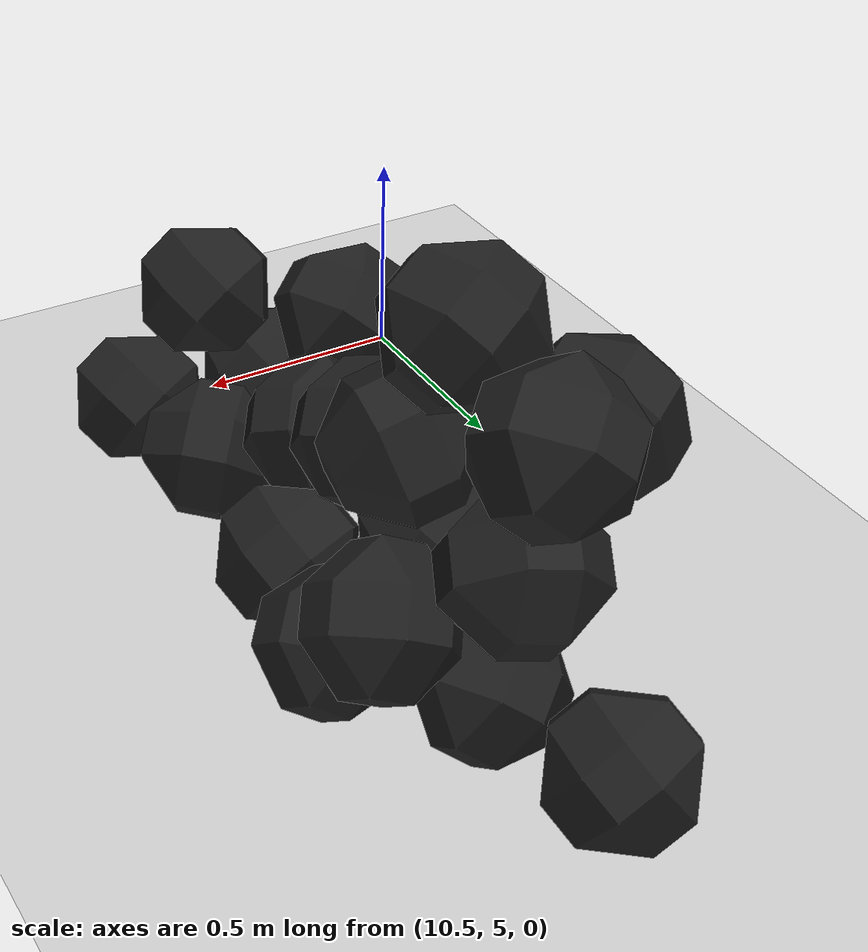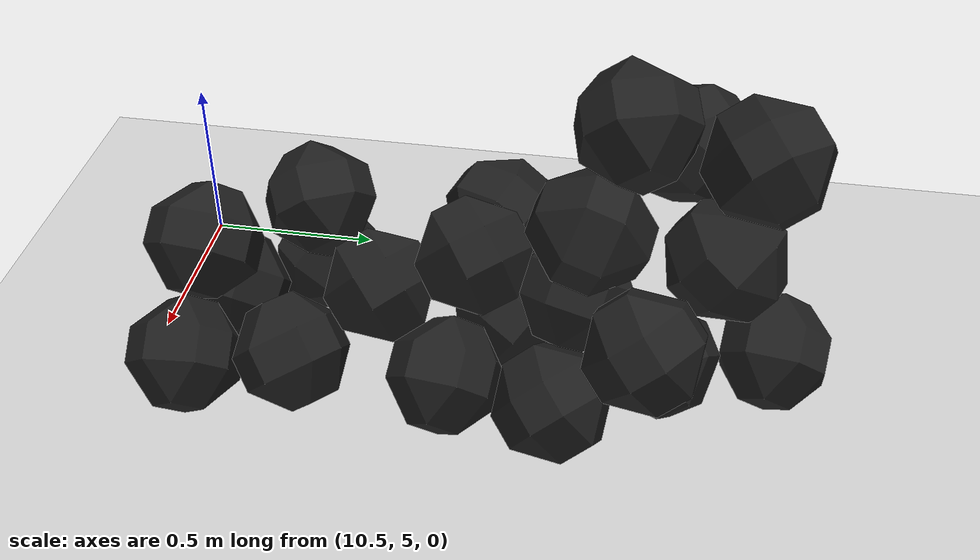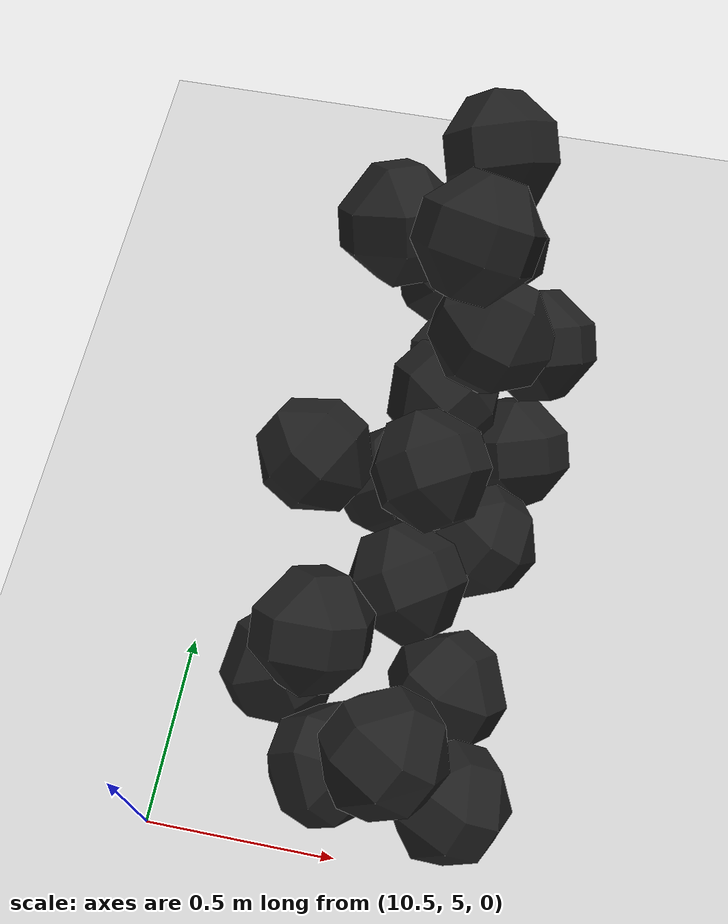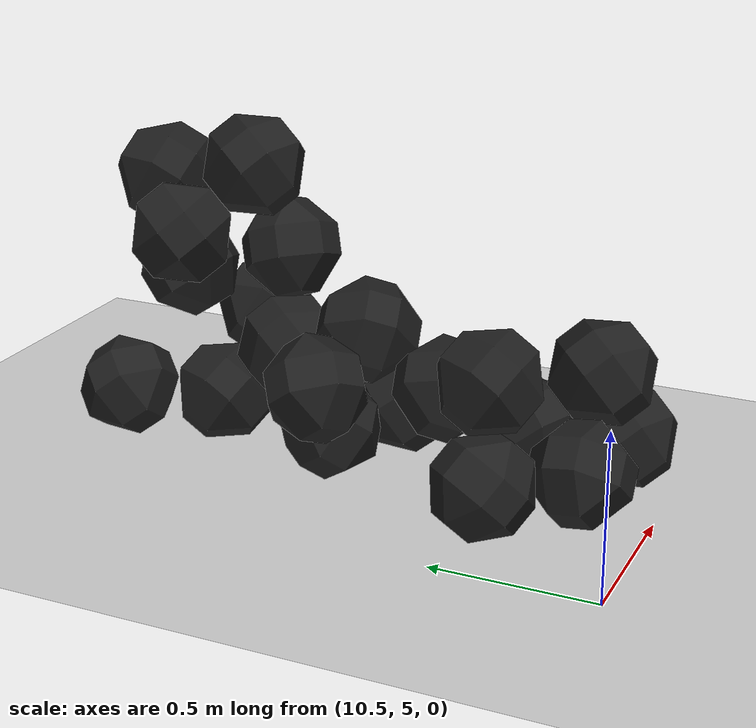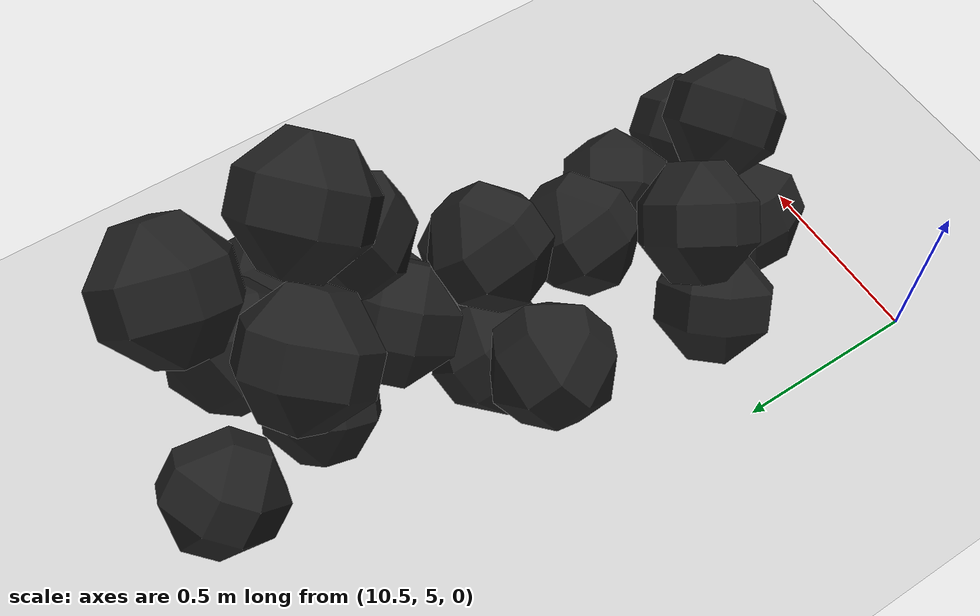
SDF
<sdf version="1.6">
 <world name="default">
  <model name="ground_plane">
   <static>1</static>
   <link name="link">
    <collision name="collision">
     <geometry><plane><normal>0 0 1</normal><size>100 100</size></plane></geometry>
     <surface><friction><ode><mu>100</mu><mu2>50</mu2></ode></friction></surface>
    </collision>
    <visual name="visual">
     <cast_shadows>0</cast_shadows>
     <geometry><plane><normal>0 0 1</normal><size>100 100</size></plane></geometry>
     <material>
      <script><uri>file://media/materials/scripts/gazebo.material</uri><name>Gazebo/Grey</name></script>
     </material>
    </visual>
   </link>
  </model>
  <model name="haoduomiantiaa_12">
   <link name="link_0">
    <inertial>
     <mass>0.2</mass>
     <inertia>
      <ixx>0.166667</ixx>
      <ixy>0</ixy>
      <ixz>0</ixz>
      <iyy>0.166667</iyy>
      <iyz>0</iyz>
      <izz>0.166667</izz>
     </inertia>
    </inertial>
    <visual name="visual">
     <geometry>
      <mesh>
       <uri>/home/oliver/catkin_ws/src/pudong_gazebo/world/stl/haoduomianti.stl</uri>
       <scale>1 1 1</scale>
      </mesh>
     </geometry>
     <material>
      <lighting>1</lighting>
      <script><uri>file://media/materials/scripts/gazebo.material</uri><name>Gazebo/Black</name></script>
      <shader type="pixel"><normal_map>__default__</normal_map></shader>
      <ambient>0.3 0.3 0.3 1</ambient>
      <diffuse>0.7 0.7 0.7 1</diffuse>
      <specular>0.01 0.01 0.01 1</specular>
      <emissive>0 0 0 1</emissive>
     </material>
    </visual>
    <collision name="collision">
     <geometry>
      <mesh>
       <uri>/home/oliver/catkin_ws/src/pudong_gazebo/world/stl/haoduomianti.stl</uri>
       <scale>1 1 1</scale>
      </mesh>
     </geometry>
     <surface>
      <friction>
       <ode><mu>1</mu><mu2>1</mu2><fdir1>0 0 0</fdir1><slip1>0</slip1><slip2>0</slip2></ode>
       <torsional>
        <coefficient>1</coefficient>
        <patch_radius>0</patch_radius>
        <surface_radius>0</surface_radius>
        <use_patch_radius>1</use_patch_radius>
        <ode><slip>0</slip></ode>
       </torsional>
      </friction>
      <bounce><restitution_coefficient>0</restitution_coefficient><threshold>1e+06</threshold></bounce>
      <contact>
       <collide_without_contact>0</collide_without_contact>
       <collide_without_contact_bitmask>1</collide_without_contact_bitmask>
       <collide_bitmask>1</collide_bitmask>
       <ode>
        <soft_cfm>0</soft_cfm>
        <soft_erp>0.2</soft_erp>
        <kp>1e+13</kp>
        <kd>1</kd>
        <max_vel>0.01</max_vel>
        <min_depth>0</min_depth>
       </ode>
       <bullet>
        <split_impulse>1</split_impulse>
        <split_impulse_penetration_threshold>-0.01</split_impulse_penetration_threshold>
        <soft_cfm>0</soft_cfm>
        <soft_erp>0.2</soft_erp>
        <kp>1e+13</kp>
        <kd>1</kd>
       </bullet>
      </contact>
     </surface>
    </collision>
   </link>
   <static>0</static>
   <pose>10.9939 6.75967 -0.115712 0.784651 -0.615816 -1.19184</pose>
  </model>
  <model name="haoduomiantiaa_19">
   <link name="link_0">
    <inertial>
     <mass>0.2</mass>
     <inertia>
      <ixx>0.166667</ixx>
      <ixy>0</ixy>
      <ixz>0</ixz>
      <iyy>0.166667</iyy>
      <iyz>0</iyz>
      <izz>0.166667</izz>
     </inertia>
    </inertial>
    <visual name="visual">
     <geometry>
      <mesh>
       <uri>/home/oliver/catkin_ws/src/pudong_gazebo/world/stl/haoduomianti.stl</uri>
       <scale>1 1 1</scale>
      </mesh>
     </geometry>
     <material>
      <lighting>1</lighting>
      <script><uri>file://media/materials/scripts/gazebo.material</uri><name>Gazebo/Black</name></script>
      <shader type="pixel"><normal_map>__default__</normal_map></shader>
      <ambient>0.3 0.3 0.3 1</ambient>
      <diffuse>0.7 0.7 0.7 1</diffuse>
      <specular>0.01 0.01 0.01 1</specular>
      <emissive>0 0 0 1</emissive>
     </material>
    </visual>
    <collision name="collision">
     <geometry>
      <mesh>
       <uri>/home/oliver/catkin_ws/src/pudong_gazebo/world/stl/haoduomianti.stl</uri>
       <scale>1 1 1</scale>
      </mesh>
     </geometry>
     <surface>
      <friction>
       <ode><mu>1</mu><mu2>1</mu2><fdir1>0 0 0</fdir1><slip1>0</slip1><slip2>0</slip2></ode>
       <torsional>
        <coefficient>1</coefficient>
        <patch_radius>0</patch_radius>
        <surface_radius>0</surface_radius>
        <use_patch_radius>1</use_patch_radius>
        <ode><slip>0</slip></ode>
       </torsional>
      </friction>
      <bounce><restitution_coefficient>0</restitution_coefficient><threshold>1e+06</threshold></bounce>
      <contact>
       <collide_without_contact>0</collide_without_contact>
       <collide_without_contact_bitmask>1</collide_without_contact_bitmask>
       <collide_bitmask>1</collide_bitmask>
       <ode>
        <soft_cfm>0</soft_cfm>
        <soft_erp>0.2</soft_erp>
        <kp>1e+13</kp>
        <kd>1</kd>
        <max_vel>0.01</max_vel>
        <min_depth>0</min_depth>
       </ode>
       <bullet>
        <split_impulse>1</split_impulse>
        <split_impulse_penetration_threshold>-0.01</split_impulse_penetration_threshold>
        <soft_cfm>0</soft_cfm>
        <soft_erp>0.2</soft_erp>
        <kp>1e+13</kp>
        <kd>1</kd>
       </bullet>
      </contact>
     </surface>
    </collision>
   </link>
   <static>0</static>
   <pose>11.2345 5.88753 -0.115497 0.785474 -0.615337 -1.16908</pose>
  </model>
  <model name="haoduomiantiaa_26">
   <link name="link_0">
    <inertial>
     <mass>0.2</mass>
     <inertia>
      <ixx>0.166667</ixx>
      <ixy>0</ixy>
      <ixz>0</ixz>
      <iyy>0.166667</iyy>
      <iyz>0</iyz>
      <izz>0.166667</izz>
     </inertia>
    </inertial>
    <visual name="visual">
     <geometry>
      <mesh>
       <uri>/home/oliver/catkin_ws/src/pudong_gazebo/world/stl/haoduomianti.stl</uri>
       <scale>1 1 1</scale>
      </mesh>
     </geometry>
     <material>
      <lighting>1</lighting>
      <script><uri>file://media/materials/scripts/gazebo.material</uri><name>Gazebo/Black</name></script>
      <shader type="pixel"><normal_map>__default__</normal_map></shader>
      <ambient>0.3 0.3 0.3 1</ambient>
      <diffuse>0.7 0.7 0.7 1</diffuse>
      <specular>0.01 0.01 0.01 1</specular>
      <emissive>0 0 0 1</emissive>
     </material>
    </visual>
    <collision name="collision">
     <geometry>
      <mesh>
       <uri>/home/oliver/catkin_ws/src/pudong_gazebo/world/stl/haoduomianti.stl</uri>
       <scale>1 1 1</scale>
      </mesh>
     </geometry>
     <surface>
      <friction>
       <ode><mu>1</mu><mu2>1</mu2><fdir1>0 0 0</fdir1><slip1>0</slip1><slip2>0</slip2></ode>
       <torsional>
        <coefficient>1</coefficient>
        <patch_radius>0</patch_radius>
        <surface_radius>0</surface_radius>
        <use_patch_radius>1</use_patch_radius>
        <ode><slip>0</slip></ode>
       </torsional>
      </friction>
      <bounce><restitution_coefficient>0</restitution_coefficient><threshold>1e+06</threshold></bounce>
      <contact>
       <collide_without_contact>0</collide_without_contact>
       <collide_without_contact_bitmask>1</collide_without_contact_bitmask>
       <collide_bitmask>1</collide_bitmask>
       <ode>
        <soft_cfm>0</soft_cfm>
        <soft_erp>0.2</soft_erp>
        <kp>1e+13</kp>
        <kd>1</kd>
        <max_vel>0.01</max_vel>
        <min_depth>0</min_depth>
       </ode>
       <bullet>
        <split_impulse>1</split_impulse>
        <split_impulse_penetration_threshold>-0.01</split_impulse_penetration_threshold>
        <soft_cfm>0</soft_cfm>
        <soft_erp>0.2</soft_erp>
        <kp>1e+13</kp>
        <kd>1</kd>
       </bullet>
      </contact>
     </surface>
    </collision>
   </link>
   <static>0</static>
   <pose>11.2894 6.18237 -0.116091 0.785747 -0.615498 1.87095</pose>
  </model>
  <model name="haoduomiantiaa_43">
   <link name="link_0">
    <inertial>
     <mass>0.2</mass>
     <inertia>
      <ixx>0.166667</ixx>
      <ixy>0</ixy>
      <ixz>0</ixz>
      <iyy>0.166667</iyy>
      <iyz>0</iyz>
      <izz>0.166667</izz>
     </inertia>
    </inertial>
    <visual name="visual">
     <geometry>
      <mesh>
       <uri>/home/oliver/catkin_ws/src/pudong_gazebo/world/stl/haoduomianti.stl</uri>
       <scale>1 1 1</scale>
      </mesh>
     </geometry>
     <material>
      <lighting>1</lighting>
      <script><uri>file://media/materials/scripts/gazebo.material</uri><name>Gazebo/Black</name></script>
      <shader type="pixel"><normal_map>__default__</normal_map></shader>
      <ambient>0.3 0.3 0.3 1</ambient>
      <diffuse>0.7 0.7 0.7 1</diffuse>
      <specular>0.01 0.01 0.01 1</specular>
      <emissive>0 0 0 1</emissive>
     </material>
    </visual>
    <collision name="collision">
     <geometry>
      <mesh>
       <uri>/home/oliver/catkin_ws/src/pudong_gazebo/world/stl/haoduomianti.stl</uri>
       <scale>1 1 1</scale>
      </mesh>
     </geometry>
     <surface>
      <friction>
       <ode><mu>1</mu><mu2>1</mu2><fdir1>0 0 0</fdir1><slip1>0</slip1><slip2>0</slip2></ode>
       <torsional>
        <coefficient>1</coefficient>
        <patch_radius>0</patch_radius>
        <surface_radius>0</surface_radius>
        <use_patch_radius>1</use_patch_radius>
        <ode><slip>0</slip></ode>
       </torsional>
      </friction>
      <bounce><restitution_coefficient>0</restitution_coefficient><threshold>1e+06</threshold></bounce>
      <contact>
       <collide_without_contact>0</collide_without_contact>
       <collide_without_contact_bitmask>1</collide_without_contact_bitmask>
       <collide_bitmask>1</collide_bitmask>
       <ode>
        <soft_cfm>0</soft_cfm>
        <soft_erp>0.2</soft_erp>
        <kp>1e+13</kp>
        <kd>1</kd>
        <max_vel>0.01</max_vel>
        <min_depth>0</min_depth>
       </ode>
       <bullet>
        <split_impulse>1</split_impulse>
        <split_impulse_penetration_threshold>-0.01</split_impulse_penetration_threshold>
        <soft_cfm>0</soft_cfm>
        <soft_erp>0.2</soft_erp>
        <kp>1e+13</kp>
        <kd>1</kd>
       </bullet>
      </contact>
     </surface>
    </collision>
   </link>
   <static>0</static>
   <pose>10.9638 6.02305 -0.114013 0.828317 -0.635149 0.227457</pose>
  </model>
  <model name="haoduomiantiaa_46">
   <link name="link_0">
    <inertial>
     <mass>0.2</mass>
     <inertia>
      <ixx>0.166667</ixx>
      <ixy>0</ixy>
      <ixz>0</ixz>
      <iyy>0.166667</iyy>
      <iyz>0</iyz>
      <izz>0.166667</izz>
     </inertia>
    </inertial>
    <visual name="visual">
     <geometry>
      <mesh>
       <uri>/home/oliver/catkin_ws/src/pudong_gazebo/world/stl/haoduomianti.stl</uri>
       <scale>1 1 1</scale>
      </mesh>
     </geometry>
     <material>
      <lighting>1</lighting>
      <script><uri>file://media/materials/scripts/gazebo.material</uri><name>Gazebo/Black</name></script>
      <shader type="pixel"><normal_map>__default__</normal_map></shader>
      <ambient>0.3 0.3 0.3 1</ambient>
      <diffuse>0.7 0.7 0.7 1</diffuse>
      <specular>0.01 0.01 0.01 1</specular>
      <emissive>0 0 0 1</emissive>
     </material>
    </visual>
    <collision name="collision">
     <geometry>
      <mesh>
       <uri>/home/oliver/catkin_ws/src/pudong_gazebo/world/stl/haoduomianti.stl</uri>
       <scale>1 1 1</scale>
      </mesh>
     </geometry>
     <surface>
      <friction>
       <ode><mu>1</mu><mu2>1</mu2><fdir1>0 0 0</fdir1><slip1>0</slip1><slip2>0</slip2></ode>
       <torsional>
        <coefficient>1</coefficient>
        <patch_radius>0</patch_radius>
        <surface_radius>0</surface_radius>
        <use_patch_radius>1</use_patch_radius>
        <ode><slip>0</slip></ode>
       </torsional>
      </friction>
      <bounce><restitution_coefficient>0</restitution_coefficient><threshold>1e+06</threshold></bounce>
      <contact>
       <collide_without_contact>0</collide_without_contact>
       <collide_without_contact_bitmask>1</collide_without_contact_bitmask>
       <collide_bitmask>1</collide_bitmask>
       <ode>
        <soft_cfm>0</soft_cfm>
        <soft_erp>0.2</soft_erp>
        <kp>1e+13</kp>
        <kd>1</kd>
        <max_vel>0.01</max_vel>
        <min_depth>0</min_depth>
       </ode>
       <bullet>
        <split_impulse>1</split_impulse>
        <split_impulse_penetration_threshold>-0.01</split_impulse_penetration_threshold>
        <soft_cfm>0</soft_cfm>
        <soft_erp>0.2</soft_erp>
        <kp>1e+13</kp>
        <kd>1</kd>
       </bullet>
      </contact>
     </surface>
    </collision>
   </link>
   <static>0</static>
   <pose>11.0783 6.44887 -0.11529 0.783274 -0.6138 -0.45428</pose>
  </model>
  <model name="haoduomiantiaa_59">
   <link name="link_0">
    <inertial>
     <mass>0.2</mass>
     <inertia>
      <ixx>0.166667</ixx>
      <ixy>0</ixy>
      <ixz>0</ixz>
      <iyy>0.166667</iyy>
      <iyz>0</iyz>
      <izz>0.166667</izz>
     </inertia>
    </inertial>
    <visual name="visual">
     <geometry>
      <mesh>
       <uri>/home/oliver/catkin_ws/src/pudong_gazebo/world/stl/haoduomianti.stl</uri>
       <scale>1 1 1</scale>
      </mesh>
     </geometry>
     <material>
      <lighting>1</lighting>
      <script><uri>file://media/materials/scripts/gazebo.material</uri><name>Gazebo/Black</name></script>
      <shader type="pixel"><normal_map>__default__</normal_map></shader>
      <ambient>0.3 0.3 0.3 1</ambient>
      <diffuse>0.7 0.7 0.7 1</diffuse>
      <specular>0.01 0.01 0.01 1</specular>
      <emissive>0 0 0 1</emissive>
     </material>
    </visual>
    <collision name="collision">
     <geometry>
      <mesh>
       <uri>/home/oliver/catkin_ws/src/pudong_gazebo/world/stl/haoduomianti.stl</uri>
       <scale>1 1 1</scale>
      </mesh>
     </geometry>
     <surface>
      <friction>
       <ode><mu>1</mu><mu2>1</mu2><fdir1>0 0 0</fdir1><slip1>0</slip1><slip2>0</slip2></ode>
       <torsional>
        <coefficient>1</coefficient>
        <patch_radius>0</patch_radius>
        <surface_radius>0</surface_radius>
        <use_patch_radius>1</use_patch_radius>
        <ode><slip>0</slip></ode>
       </torsional>
      </friction>
      <bounce><restitution_coefficient>0</restitution_coefficient><threshold>1e+06</threshold></bounce>
      <contact>
       <collide_without_contact>0</collide_without_contact>
       <collide_without_contact_bitmask>1</collide_without_contact_bitmask>
       <collide_bitmask>1</collide_bitmask>
       <ode>
        <soft_cfm>0</soft_cfm>
        <soft_erp>0.2</soft_erp>
        <kp>1e+13</kp>
        <kd>1</kd>
        <max_vel>0.01</max_vel>
        <min_depth>0</min_depth>
       </ode>
       <bullet>
        <split_impulse>1</split_impulse>
        <split_impulse_penetration_threshold>-0.01</split_impulse_penetration_threshold>
        <soft_cfm>0</soft_cfm>
        <soft_erp>0.2</soft_erp>
        <kp>1e+13</kp>
        <kd>1</kd>
       </bullet>
      </contact>
     </surface>
    </collision>
   </link>
   <static>0</static>
   <pose>11.2686 6.39493 0.108984 0.707266 -0.492304 -0.104435</pose>
  </model>
  <model name="haoduomiantiaa_69">
   <link name="link_0">
    <inertial>
     <mass>0.2</mass>
     <inertia>
      <ixx>0.166667</ixx>
      <ixy>0</ixy>
      <ixz>0</ixz>
      <iyy>0.166667</iyy>
      <iyz>0</iyz>
      <izz>0.166667</izz>
     </inertia>
    </inertial>
    <visual name="visual">
     <geometry>
      <mesh>
       <uri>/home/oliver/catkin_ws/src/pudong_gazebo/world/stl/haoduomianti.stl</uri>
       <scale>1 1 1</scale>
      </mesh>
     </geometry>
     <material>
      <lighting>1</lighting>
      <script><uri>file://media/materials/scripts/gazebo.material</uri><name>Gazebo/Black</name></script>
      <shader type="pixel"><normal_map>__default__</normal_map></shader>
      <ambient>0.3 0.3 0.3 1</ambient>
      <diffuse>0.7 0.7 0.7 1</diffuse>
      <specular>0.01 0.01 0.01 1</specular>
      <emissive>0 0 0 1</emissive>
     </material>
    </visual>
    <collision name="collision">
     <geometry>
      <mesh>
       <uri>/home/oliver/catkin_ws/src/pudong_gazebo/world/stl/haoduomianti.stl</uri>
       <scale>1 1 1</scale>
      </mesh>
     </geometry>
     <surface>
      <friction>
       <ode><mu>1</mu><mu2>1</mu2><fdir1>0 0 0</fdir1><slip1>0</slip1><slip2>0</slip2></ode>
       <torsional>
        <coefficient>1</coefficient>
        <patch_radius>0</patch_radius>
        <surface_radius>0</surface_radius>
        <use_patch_radius>1</use_patch_radius>
        <ode><slip>0</slip></ode>
       </torsional>
      </friction>
      <bounce><restitution_coefficient>0</restitution_coefficient><threshold>1e+06</threshold></bounce>
      <contact>
       <collide_without_contact>0</collide_without_contact>
       <collide_without_contact_bitmask>1</collide_without_contact_bitmask>
       <collide_bitmask>1</collide_bitmask>
       <ode>
        <soft_cfm>0</soft_cfm>
        <soft_erp>0.2</soft_erp>
        <kp>1e+13</kp>
        <kd>1</kd>
        <max_vel>0.01</max_vel>
        <min_depth>0</min_depth>
       </ode>
       <bullet>
        <split_impulse>1</split_impulse>
        <split_impulse_penetration_threshold>-0.01</split_impulse_penetration_threshold>
        <soft_cfm>0</soft_cfm>
        <soft_erp>0.2</soft_erp>
        <kp>1e+13</kp>
        <kd>1</kd>
       </bullet>
      </contact>
     </surface>
    </collision>
   </link>
   <static>0</static>
   <pose>10.8607 5.53176 -0.09146 1.41855 -0.77893 -0.677783</pose>
  </model>
  <model name="haoduomiantiaa_73">
   <link name="link_0">
    <inertial>
     <mass>0.2</mass>
     <inertia>
      <ixx>0.166667</ixx>
      <ixy>0</ixy>
      <ixz>0</ixz>
      <iyy>0.166667</iyy>
      <iyz>0</iyz>
      <izz>0.166667</izz>
     </inertia>
    </inertial>
    <visual name="visual">
     <geometry>
      <mesh>
       <uri>/home/oliver/catkin_ws/src/pudong_gazebo/world/stl/haoduomianti.stl</uri>
       <scale>1 1 1</scale>
      </mesh>
     </geometry>
     <material>
      <lighting>1</lighting>
      <script><uri>file://media/materials/scripts/gazebo.material</uri><name>Gazebo/Black</name></script>
      <shader type="pixel"><normal_map>__default__</normal_map></shader>
      <ambient>0.3 0.3 0.3 1</ambient>
      <diffuse>0.7 0.7 0.7 1</diffuse>
      <specular>0.01 0.01 0.01 1</specular>
      <emissive>0 0 0 1</emissive>
     </material>
    </visual>
    <collision name="collision">
     <geometry>
      <mesh>
       <uri>/home/oliver/catkin_ws/src/pudong_gazebo/world/stl/haoduomianti.stl</uri>
       <scale>1 1 1</scale>
      </mesh>
     </geometry>
     <surface>
      <friction>
       <ode><mu>1</mu><mu2>1</mu2><fdir1>0 0 0</fdir1><slip1>0</slip1><slip2>0</slip2></ode>
       <torsional>
        <coefficient>1</coefficient>
        <patch_radius>0</patch_radius>
        <surface_radius>0</surface_radius>
        <use_patch_radius>1</use_patch_radius>
        <ode><slip>0</slip></ode>
       </torsional>
      </friction>
      <bounce><restitution_coefficient>0</restitution_coefficient><threshold>1e+06</threshold></bounce>
      <contact>
       <collide_without_contact>0</collide_without_contact>
       <collide_without_contact_bitmask>1</collide_without_contact_bitmask>
       <collide_bitmask>1</collide_bitmask>
       <ode>
        <soft_cfm>0</soft_cfm>
        <soft_erp>0.2</soft_erp>
        <kp>1e+13</kp>
        <kd>1</kd>
        <max_vel>0.01</max_vel>
        <min_depth>0</min_depth>
       </ode>
       <bullet>
        <split_impulse>1</split_impulse>
        <split_impulse_penetration_threshold>-0.01</split_impulse_penetration_threshold>
        <soft_cfm>0</soft_cfm>
        <soft_erp>0.2</soft_erp>
        <kp>1e+13</kp>
        <kd>1</kd>
       </bullet>
      </contact>
     </surface>
    </collision>
   </link>
   <static>0</static>
   <pose>11.119 5.5201 -0.085975 0.226305 -0.772461 -2.33441</pose>
  </model>
  <model name="haoduomiantiaa_92">
   <link name="link_0">
    <inertial>
     <mass>0.2</mass>
     <inertia>
      <ixx>0.166667</ixx>
      <ixy>0</ixy>
      <ixz>0</ixz>
      <iyy>0.166667</iyy>
      <iyz>0</iyz>
      <izz>0.166667</izz>
     </inertia>
    </inertial>
    <visual name="visual">
     <geometry>
      <mesh>
       <uri>/home/oliver/catkin_ws/src/pudong_gazebo/world/stl/haoduomianti.stl</uri>
       <scale>1 1 1</scale>
      </mesh>
     </geometry>
     <material>
      <lighting>1</lighting>
      <script><uri>file://media/materials/scripts/gazebo.material</uri><name>Gazebo/Black</name></script>
      <shader type="pixel"><normal_map>__default__</normal_map></shader>
      <ambient>0.3 0.3 0.3 1</ambient>
      <diffuse>0.7 0.7 0.7 1</diffuse>
      <specular>0.01 0.01 0.01 1</specular>
      <emissive>0 0 0 1</emissive>
     </material>
    </visual>
    <collision name="collision">
     <geometry>
      <mesh>
       <uri>/home/oliver/catkin_ws/src/pudong_gazebo/world/stl/haoduomianti.stl</uri>
       <scale>1 1 1</scale>
      </mesh>
     </geometry>
     <surface>
      <friction>
       <ode><mu>1</mu><mu2>1</mu2><fdir1>0 0 0</fdir1><slip1>0</slip1><slip2>0</slip2></ode>
       <torsional>
        <coefficient>1</coefficient>
        <patch_radius>0</patch_radius>
        <surface_radius>0</surface_radius>
        <use_patch_radius>1</use_patch_radius>
        <ode><slip>0</slip></ode>
       </torsional>
      </friction>
      <bounce><restitution_coefficient>0</restitution_coefficient><threshold>1e+06</threshold></bounce>
      <contact>
       <collide_without_contact>0</collide_without_contact>
       <collide_without_contact_bitmask>1</collide_without_contact_bitmask>
       <collide_bitmask>1</collide_bitmask>
       <ode>
        <soft_cfm>0</soft_cfm>
        <soft_erp>0.2</soft_erp>
        <kp>1e+13</kp>
        <kd>1</kd>
        <max_vel>0.01</max_vel>
        <min_depth>0</min_depth>
       </ode>
       <bullet>
        <split_impulse>1</split_impulse>
        <split_impulse_penetration_threshold>-0.01</split_impulse_penetration_threshold>
        <soft_cfm>0</soft_cfm>
        <soft_erp>0.2</soft_erp>
        <kp>1e+13</kp>
        <kd>1</kd>
       </bullet>
      </contact>
     </surface>
    </collision>
   </link>
   <static>0</static>
   <pose>10.9861 6.15578 0.109832 0.927194 -0.239546 0.88979</pose>
  </model>
  <model name="haoduomiantiaa_97">
   <link name="link_0">
    <inertial>
     <mass>0.2</mass>
     <inertia>
      <ixx>0.166667</ixx>
      <ixy>0</ixy>
      <ixz>0</ixz>
      <iyy>0.166667</iyy>
      <iyz>0</iyz>
      <izz>0.166667</izz>
     </inertia>
    </inertial>
    <visual name="visual">
     <geometry>
      <mesh>
       <uri>/home/oliver/catkin_ws/src/pudong_gazebo/world/stl/haoduomianti.stl</uri>
       <scale>1 1 1</scale>
      </mesh>
     </geometry>
     <material>
      <lighting>1</lighting>
      <script><uri>file://media/materials/scripts/gazebo.material</uri><name>Gazebo/Black</name></script>
      <shader type="pixel"><normal_map>__default__</normal_map></shader>
      <ambient>0.3 0.3 0.3 1</ambient>
      <diffuse>0.7 0.7 0.7 1</diffuse>
      <specular>0.01 0.01 0.01 1</specular>
      <emissive>0 0 0 1</emissive>
     </material>
    </visual>
    <collision name="collision">
     <geometry>
      <mesh>
       <uri>/home/oliver/catkin_ws/src/pudong_gazebo/world/stl/haoduomianti.stl</uri>
       <scale>1 1 1</scale>
      </mesh>
     </geometry>
     <surface>
      <friction>
       <ode><mu>1</mu><mu2>1</mu2><fdir1>0 0 0</fdir1><slip1>0</slip1><slip2>0</slip2></ode>
       <torsional>
        <coefficient>1</coefficient>
        <patch_radius>0</patch_radius>
        <surface_radius>0</surface_radius>
        <use_patch_radius>1</use_patch_radius>
        <ode><slip>0</slip></ode>
       </torsional>
      </friction>
      <bounce><restitution_coefficient>0</restitution_coefficient><threshold>1e+06</threshold></bounce>
      <contact>
       <collide_without_contact>0</collide_without_contact>
       <collide_without_contact_bitmask>1</collide_without_contact_bitmask>
       <collide_bitmask>1</collide_bitmask>
       <ode>
        <soft_cfm>0</soft_cfm>
        <soft_erp>0.2</soft_erp>
        <kp>1e+13</kp>
        <kd>1</kd>
        <max_vel>0.01</max_vel>
        <min_depth>0</min_depth>
       </ode>
       <bullet>
        <split_impulse>1</split_impulse>
        <split_impulse_penetration_threshold>-0.01</split_impulse_penetration_threshold>
        <soft_cfm>0</soft_cfm>
        <soft_erp>0.2</soft_erp>
        <kp>1e+13</kp>
        <kd>1</kd>
       </bullet>
      </contact>
     </surface>
    </collision>
   </link>
   <static>0</static>
   <pose>11.0269 6.6588 0.309727 0.209758 -0.580517 -1.9853</pose>
  </model>
  <model name="haoduomiantiaa_109">
   <link name="link_0">
    <inertial>
     <mass>0.2</mass>
     <inertia>
      <ixx>0.166667</ixx>
      <ixy>0</ixy>
      <ixz>0</ixz>
      <iyy>0.166667</iyy>
      <iyz>0</iyz>
      <izz>0.166667</izz>
     </inertia>
    </inertial>
    <visual name="visual">
     <geometry>
      <mesh>
       <uri>/home/oliver/catkin_ws/src/pudong_gazebo/world/stl/haoduomianti.stl</uri>
       <scale>1 1 1</scale>
      </mesh>
     </geometry>
     <material>
      <lighting>1</lighting>
      <script><uri>file://media/materials/scripts/gazebo.material</uri><name>Gazebo/Black</name></script>
      <shader type="pixel"><normal_map>__default__</normal_map></shader>
      <ambient>0.3 0.3 0.3 1</ambient>
      <diffuse>0.7 0.7 0.7 1</diffuse>
      <specular>0.01 0.01 0.01 1</specular>
      <emissive>0 0 0 1</emissive>
     </material>
    </visual>
    <collision name="collision">
     <geometry>
      <mesh>
       <uri>/home/oliver/catkin_ws/src/pudong_gazebo/world/stl/haoduomianti.stl</uri>
       <scale>1 1 1</scale>
      </mesh>
     </geometry>
     <surface>
      <friction>
       <ode><mu>1</mu><mu2>1</mu2><fdir1>0 0 0</fdir1><slip1>0</slip1><slip2>0</slip2></ode>
       <torsional>
        <coefficient>1</coefficient>
        <patch_radius>0</patch_radius>
        <surface_radius>0</surface_radius>
        <use_patch_radius>1</use_patch_radius>
        <ode><slip>0</slip></ode>
       </torsional>
      </friction>
      <bounce><restitution_coefficient>0</restitution_coefficient><threshold>1e+06</threshold></bounce>
      <contact>
       <collide_without_contact>0</collide_without_contact>
       <collide_without_contact_bitmask>1</collide_without_contact_bitmask>
       <collide_bitmask>1</collide_bitmask>
       <ode>
        <soft_cfm>0</soft_cfm>
        <soft_erp>0.2</soft_erp>
        <kp>1e+13</kp>
        <kd>1</kd>
        <max_vel>0.01</max_vel>
        <min_depth>0</min_depth>
       </ode>
       <bullet>
        <split_impulse>1</split_impulse>
        <split_impulse_penetration_threshold>-0.01</split_impulse_penetration_threshold>
        <soft_cfm>0</soft_cfm>
        <soft_erp>0.2</soft_erp>
        <kp>1e+13</kp>
        <kd>1</kd>
       </bullet>
      </contact>
     </surface>
    </collision>
   </link>
   <static>0</static>
   <pose>11.2689 6.32234 0.400131 1.24136 -0.340187 -1.61916</pose>
  </model>
  <model name="haoduomiantiaa_127">
   <link name="link_0">
    <inertial>
     <mass>0.2</mass>
     <inertia>
      <ixx>0.166667</ixx>
      <ixy>0</ixy>
      <ixz>0</ixz>
      <iyy>0.166667</iyy>
      <iyz>0</iyz>
      <izz>0.166667</izz>
     </inertia>
    </inertial>
    <visual name="visual">
     <geometry>
      <mesh>
       <uri>/home/oliver/catkin_ws/src/pudong_gazebo/world/stl/haoduomianti.stl</uri>
       <scale>1 1 1</scale>
      </mesh>
     </geometry>
     <material>
      <lighting>1</lighting>
      <script><uri>file://media/materials/scripts/gazebo.material</uri><name>Gazebo/Black</name></script>
      <shader type="pixel"><normal_map>__default__</normal_map></shader>
      <ambient>0.3 0.3 0.3 1</ambient>
      <diffuse>0.7 0.7 0.7 1</diffuse>
      <specular>0.01 0.01 0.01 1</specular>
      <emissive>0 0 0 1</emissive>
     </material>
    </visual>
    <collision name="collision">
     <geometry>
      <mesh>
       <uri>/home/oliver/catkin_ws/src/pudong_gazebo/world/stl/haoduomianti.stl</uri>
       <scale>1 1 1</scale>
      </mesh>
     </geometry>
     <surface>
      <friction>
       <ode><mu>1</mu><mu2>1</mu2><fdir1>0 0 0</fdir1><slip1>0</slip1><slip2>0</slip2></ode>
       <torsional>
        <coefficient>1</coefficient>
        <patch_radius>0</patch_radius>
        <surface_radius>0</surface_radius>
        <use_patch_radius>1</use_patch_radius>
        <ode><slip>0</slip></ode>
       </torsional>
      </friction>
      <bounce><restitution_coefficient>0</restitution_coefficient><threshold>1e+06</threshold></bounce>
      <contact>
       <collide_without_contact>0</collide_without_contact>
       <collide_without_contact_bitmask>1</collide_without_contact_bitmask>
       <collide_bitmask>1</collide_bitmask>
       <ode>
        <soft_cfm>0</soft_cfm>
        <soft_erp>0.2</soft_erp>
        <kp>1e+13</kp>
        <kd>1</kd>
        <max_vel>0.01</max_vel>
        <min_depth>0</min_depth>
       </ode>
       <bullet>
        <split_impulse>1</split_impulse>
        <split_impulse_penetration_threshold>-0.01</split_impulse_penetration_threshold>
        <soft_cfm>0</soft_cfm>
        <soft_erp>0.2</soft_erp>
        <kp>1e+13</kp>
        <kd>1</kd>
       </bullet>
      </contact>
     </surface>
    </collision>
   </link>
   <static>0</static>
   <pose>10.8744 5.4604 0.158401 0.819608 -0.594782 -2.65069</pose>
  </model>
  <model name="haoduomiantiaa_133">
   <link name="link_0">
    <inertial>
     <mass>0.2</mass>
     <inertia>
      <ixx>0.166667</ixx>
      <ixy>0</ixy>
      <ixz>0</ixz>
      <iyy>0.166667</iyy>
      <iyz>0</iyz>
      <izz>0.166667</izz>
     </inertia>
    </inertial>
    <visual name="visual">
     <geometry>
      <mesh>
       <uri>/home/oliver/catkin_ws/src/pudong_gazebo/world/stl/haoduomianti.stl</uri>
       <scale>1 1 1</scale>
      </mesh>
     </geometry>
     <material>
      <lighting>1</lighting>
      <script><uri>file://media/materials/scripts/gazebo.material</uri><name>Gazebo/Black</name></script>
      <shader type="pixel"><normal_map>__default__</normal_map></shader>
      <ambient>0.3 0.3 0.3 1</ambient>
      <diffuse>0.7 0.7 0.7 1</diffuse>
      <specular>0.01 0.01 0.01 1</specular>
      <emissive>0 0 0 1</emissive>
     </material>
    </visual>
    <collision name="collision">
     <geometry>
      <mesh>
       <uri>/home/oliver/catkin_ws/src/pudong_gazebo/world/stl/haoduomianti.stl</uri>
       <scale>1 1 1</scale>
      </mesh>
     </geometry>
     <surface>
      <friction>
       <ode><mu>1</mu><mu2>1</mu2><fdir1>0 0 0</fdir1><slip1>0</slip1><slip2>0</slip2></ode>
       <torsional>
        <coefficient>1</coefficient>
        <patch_radius>0</patch_radius>
        <surface_radius>0</surface_radius>
        <use_patch_radius>1</use_patch_radius>
        <ode><slip>0</slip></ode>
       </torsional>
      </friction>
      <bounce><restitution_coefficient>0</restitution_coefficient><threshold>1e+06</threshold></bounce>
      <contact>
       <collide_without_contact>0</collide_without_contact>
       <collide_without_contact_bitmask>1</collide_without_contact_bitmask>
       <collide_bitmask>1</collide_bitmask>
       <ode>
        <soft_cfm>0</soft_cfm>
        <soft_erp>0.2</soft_erp>
        <kp>1e+13</kp>
        <kd>1</kd>
        <max_vel>0.01</max_vel>
        <min_depth>0</min_depth>
       </ode>
       <bullet>
        <split_impulse>1</split_impulse>
        <split_impulse_penetration_threshold>-0.01</split_impulse_penetration_threshold>
        <soft_cfm>0</soft_cfm>
        <soft_erp>0.2</soft_erp>
        <kp>1e+13</kp>
        <kd>1</kd>
       </bullet>
      </contact>
     </surface>
    </collision>
   </link>
   <static>0</static>
   <pose>11.0962 5.62538 0.036643 0.786665 -0.375184 2.14539</pose>
  </model>
  <model name="haoduomiantiaa_135">
   <link name="link_0">
    <inertial>
     <mass>0.2</mass>
     <inertia>
      <ixx>0.166667</ixx>
      <ixy>0</ixy>
      <ixz>0</ixz>
      <iyy>0.166667</iyy>
      <iyz>0</iyz>
      <izz>0.166667</izz>
     </inertia>
    </inertial>
    <visual name="visual">
     <geometry>
      <mesh>
       <uri>/home/oliver/catkin_ws/src/pudong_gazebo/world/stl/haoduomianti.stl</uri>
       <scale>1 1 1</scale>
      </mesh>
     </geometry>
     <material>
      <lighting>1</lighting>
      <script><uri>file://media/materials/scripts/gazebo.material</uri><name>Gazebo/Black</name></script>
      <shader type="pixel"><normal_map>__default__</normal_map></shader>
      <ambient>0.3 0.3 0.3 1</ambient>
      <diffuse>0.7 0.7 0.7 1</diffuse>
      <specular>0.01 0.01 0.01 1</specular>
      <emissive>0 0 0 1</emissive>
     </material>
    </visual>
    <collision name="collision">
     <geometry>
      <mesh>
       <uri>/home/oliver/catkin_ws/src/pudong_gazebo/world/stl/haoduomianti.stl</uri>
       <scale>1 1 1</scale>
      </mesh>
     </geometry>
     <surface>
      <friction>
       <ode><mu>1</mu><mu2>1</mu2><fdir1>0 0 0</fdir1><slip1>0</slip1><slip2>0</slip2></ode>
       <torsional>
        <coefficient>1</coefficient>
        <patch_radius>0</patch_radius>
        <surface_radius>0</surface_radius>
        <use_patch_radius>1</use_patch_radius>
        <ode><slip>0</slip></ode>
       </torsional>
      </friction>
      <bounce><restitution_coefficient>0</restitution_coefficient><threshold>1e+06</threshold></bounce>
      <contact>
       <collide_without_contact>0</collide_without_contact>
       <collide_without_contact_bitmask>1</collide_without_contact_bitmask>
       <collide_bitmask>1</collide_bitmask>
       <ode>
        <soft_cfm>0</soft_cfm>
        <soft_erp>0.2</soft_erp>
        <kp>1e+13</kp>
        <kd>1</kd>
        <max_vel>0.01</max_vel>
        <min_depth>0</min_depth>
       </ode>
       <bullet>
        <split_impulse>1</split_impulse>
        <split_impulse_penetration_threshold>-0.01</split_impulse_penetration_threshold>
        <soft_cfm>0</soft_cfm>
        <soft_erp>0.2</soft_erp>
        <kp>1e+13</kp>
        <kd>1</kd>
       </bullet>
      </contact>
     </surface>
    </collision>
   </link>
   <static>0</static>
   <pose>10.9621 6.55505 0.488995 0.361273 -0.898567 1.82613</pose>
  </model>
  <model name="haoduomiantiaa_155">
   <link name="link_0">
    <inertial>
     <mass>0.2</mass>
     <inertia>
      <ixx>0.166667</ixx>
      <ixy>0</ixy>
      <ixz>0</ixz>
      <iyy>0.166667</iyy>
      <iyz>0</iyz>
      <izz>0.166667</izz>
     </inertia>
    </inertial>
    <visual name="visual">
     <geometry>
      <mesh>
       <uri>/home/oliver/catkin_ws/src/pudong_gazebo/world/stl/haoduomianti.stl</uri>
       <scale>1 1 1</scale>
      </mesh>
     </geometry>
     <material>
      <lighting>1</lighting>
      <script><uri>file://media/materials/scripts/gazebo.material</uri><name>Gazebo/Black</name></script>
      <shader type="pixel"><normal_map>__default__</normal_map></shader>
      <ambient>0.3 0.3 0.3 1</ambient>
      <diffuse>0.7 0.7 0.7 1</diffuse>
      <specular>0.01 0.01 0.01 1</specular>
      <emissive>0 0 0 1</emissive>
     </material>
    </visual>
    <collision name="collision">
     <geometry>
      <mesh>
       <uri>/home/oliver/catkin_ws/src/pudong_gazebo/world/stl/haoduomianti.stl</uri>
       <scale>1 1 1</scale>
      </mesh>
     </geometry>
     <surface>
      <friction>
       <ode><mu>1</mu><mu2>1</mu2><fdir1>0 0 0</fdir1><slip1>0</slip1><slip2>0</slip2></ode>
       <torsional>
        <coefficient>1</coefficient>
        <patch_radius>0</patch_radius>
        <surface_radius>0</surface_radius>
        <use_patch_radius>1</use_patch_radius>
        <ode><slip>0</slip></ode>
       </torsional>
      </friction>
      <bounce><restitution_coefficient>0</restitution_coefficient><threshold>1e+06</threshold></bounce>
      <contact>
       <collide_without_contact>0</collide_without_contact>
       <collide_without_contact_bitmask>1</collide_without_contact_bitmask>
       <collide_bitmask>1</collide_bitmask>
       <ode>
        <soft_cfm>0</soft_cfm>
        <soft_erp>0.2</soft_erp>
        <kp>1e+13</kp>
        <kd>1</kd>
        <max_vel>0.01</max_vel>
        <min_depth>0</min_depth>
       </ode>
       <bullet>
        <split_impulse>1</split_impulse>
        <split_impulse_penetration_threshold>-0.01</split_impulse_penetration_threshold>
        <soft_cfm>0</soft_cfm>
        <soft_erp>0.2</soft_erp>
        <kp>1e+13</kp>
        <kd>1</kd>
       </bullet>
      </contact>
     </surface>
    </collision>
   </link>
   <static>0</static>
   <pose>11.1482 6.64161 0.580332 0.779418 -0.741706 -0.272455</pose>
  </model>
  <model name="haoduomiantiaa_159">
   <link name="link_0">
    <inertial>
     <mass>0.2</mass>
     <inertia>
      <ixx>0.166667</ixx>
      <ixy>0</ixy>
      <ixz>0</ixz>
      <iyy>0.166667</iyy>
      <iyz>0</iyz>
      <izz>0.166667</izz>
     </inertia>
    </inertial>
    <visual name="visual">
     <geometry>
      <mesh>
       <uri>/home/oliver/catkin_ws/src/pudong_gazebo/world/stl/haoduomianti.stl</uri>
       <scale>1 1 1</scale>
      </mesh>
     </geometry>
     <material>
      <lighting>1</lighting>
      <script><uri>file://media/materials/scripts/gazebo.material</uri><name>Gazebo/Black</name></script>
      <shader type="pixel"><normal_map>__default__</normal_map></shader>
      <ambient>0.3 0.3 0.3 1</ambient>
      <diffuse>0.7 0.7 0.7 1</diffuse>
      <specular>0.01 0.01 0.01 1</specular>
      <emissive>0 0 0 1</emissive>
     </material>
    </visual>
    <collision name="collision">
     <geometry>
      <mesh>
       <uri>/home/oliver/catkin_ws/src/pudong_gazebo/world/stl/haoduomianti.stl</uri>
       <scale>1 1 1</scale>
      </mesh>
     </geometry>
     <surface>
      <friction>
       <ode><mu>1</mu><mu2>1</mu2><fdir1>0 0 0</fdir1><slip1>0</slip1><slip2>0</slip2></ode>
       <torsional>
        <coefficient>1</coefficient>
        <patch_radius>0</patch_radius>
        <surface_radius>0</surface_radius>
        <use_patch_radius>1</use_patch_radius>
        <ode><slip>0</slip></ode>
       </torsional>
      </friction>
      <bounce><restitution_coefficient>0</restitution_coefficient><threshold>1e+06</threshold></bounce>
      <contact>
       <collide_without_contact>0</collide_without_contact>
       <collide_without_contact_bitmask>1</collide_without_contact_bitmask>
       <collide_bitmask>1</collide_bitmask>
       <ode>
        <soft_cfm>0</soft_cfm>
        <soft_erp>0.2</soft_erp>
        <kp>1e+13</kp>
        <kd>1</kd>
        <max_vel>0.01</max_vel>
        <min_depth>0</min_depth>
       </ode>
       <bullet>
        <split_impulse>1</split_impulse>
        <split_impulse_penetration_threshold>-0.01</split_impulse_penetration_threshold>
        <soft_cfm>0</soft_cfm>
        <soft_erp>0.2</soft_erp>
        <kp>1e+13</kp>
        <kd>1</kd>
       </bullet>
      </contact>
     </surface>
    </collision>
   </link>
   <static>0</static>
   <pose>11.2675 5.16914 -0.115227 0.785305 -0.61519 -3.06662</pose>
  </model>
  <model name="haoduomiantiaa_171">
   <link name="link_0">
    <inertial>
     <mass>0.2</mass>
     <inertia>
      <ixx>0.166667</ixx>
      <ixy>0</ixy>
      <ixz>0</ixz>
      <iyy>0.166667</iyy>
      <iyz>0</iyz>
      <izz>0.166667</izz>
     </inertia>
    </inertial>
    <visual name="visual">
     <geometry>
      <mesh>
       <uri>/home/oliver/catkin_ws/src/pudong_gazebo/world/stl/haoduomianti.stl</uri>
       <scale>1 1 1</scale>
      </mesh>
     </geometry>
     <material>
      <lighting>1</lighting>
      <script><uri>file://media/materials/scripts/gazebo.material</uri><name>Gazebo/Black</name></script>
      <shader type="pixel"><normal_map>__default__</normal_map></shader>
      <ambient>0.3 0.3 0.3 1</ambient>
      <diffuse>0.7 0.7 0.7 1</diffuse>
      <specular>0.01 0.01 0.01 1</specular>
      <emissive>0 0 0 1</emissive>
     </material>
    </visual>
    <collision name="collision">
     <geometry>
      <mesh>
       <uri>/home/oliver/catkin_ws/src/pudong_gazebo/world/stl/haoduomianti.stl</uri>
       <scale>1 1 1</scale>
      </mesh>
     </geometry>
     <surface>
      <friction>
       <ode><mu>1</mu><mu2>1</mu2><fdir1>0 0 0</fdir1><slip1>0</slip1><slip2>0</slip2></ode>
       <torsional>
        <coefficient>1</coefficient>
        <patch_radius>0</patch_radius>
        <surface_radius>0</surface_radius>
        <use_patch_radius>1</use_patch_radius>
        <ode><slip>0</slip></ode>
       </torsional>
      </friction>
      <bounce><restitution_coefficient>0</restitution_coefficient><threshold>1e+06</threshold></bounce>
      <contact>
       <collide_without_contact>0</collide_without_contact>
       <collide_without_contact_bitmask>1</collide_without_contact_bitmask>
       <collide_bitmask>1</collide_bitmask>
       <ode>
        <soft_cfm>0</soft_cfm>
        <soft_erp>0.2</soft_erp>
        <kp>1e+13</kp>
        <kd>1</kd>
        <max_vel>0.01</max_vel>
        <min_depth>0</min_depth>
       </ode>
       <bullet>
        <split_impulse>1</split_impulse>
        <split_impulse_penetration_threshold>-0.01</split_impulse_penetration_threshold>
        <soft_cfm>0</soft_cfm>
        <soft_erp>0.2</soft_erp>
        <kp>1e+13</kp>
        <kd>1</kd>
       </bullet>
      </contact>
     </surface>
    </collision>
   </link>
   <static>0</static>
   <pose>11.1238 6.35412 0.641907 0.719943 -0.692579 1.33979</pose>
  </model>
  <model name="haoduomiantiaa_172">
   <link name="link_0">
    <inertial>
     <mass>0.2</mass>
     <inertia>
      <ixx>0.166667</ixx>
      <ixy>0</ixy>
      <ixz>0</ixz>
      <iyy>0.166667</iyy>
      <iyz>0</iyz>
      <izz>0.166667</izz>
     </inertia>
    </inertial>
    <visual name="visual">
     <geometry>
      <mesh>
       <uri>/home/oliver/catkin_ws/src/pudong_gazebo/world/stl/haoduomianti.stl</uri>
       <scale>1 1 1</scale>
      </mesh>
     </geometry>
     <material>
      <lighting>1</lighting>
      <script><uri>file://media/materials/scripts/gazebo.material</uri><name>Gazebo/Black</name></script>
      <shader type="pixel"><normal_map>__default__</normal_map></shader>
      <ambient>0.3 0.3 0.3 1</ambient>
      <diffuse>0.7 0.7 0.7 1</diffuse>
      <specular>0.01 0.01 0.01 1</specular>
      <emissive>0 0 0 1</emissive>
     </material>
    </visual>
    <collision name="collision">
     <geometry>
      <mesh>
       <uri>/home/oliver/catkin_ws/src/pudong_gazebo/world/stl/haoduomianti.stl</uri>
       <scale>1 1 1</scale>
      </mesh>
     </geometry>
     <surface>
      <friction>
       <ode><mu>1</mu><mu2>1</mu2><fdir1>0 0 0</fdir1><slip1>0</slip1><slip2>0</slip2></ode>
       <torsional>
        <coefficient>1</coefficient>
        <patch_radius>0</patch_radius>
        <surface_radius>0</surface_radius>
        <use_patch_radius>1</use_patch_radius>
        <ode><slip>0</slip></ode>
       </torsional>
      </friction>
      <bounce><restitution_coefficient>0</restitution_coefficient><threshold>1e+06</threshold></bounce>
      <contact>
       <collide_without_contact>0</collide_without_contact>
       <collide_without_contact_bitmask>1</collide_without_contact_bitmask>
       <collide_bitmask>1</collide_bitmask>
       <ode>
        <soft_cfm>0</soft_cfm>
        <soft_erp>0.2</soft_erp>
        <kp>1e+13</kp>
        <kd>1</kd>
        <max_vel>0.01</max_vel>
        <min_depth>0</min_depth>
       </ode>
       <bullet>
        <split_impulse>1</split_impulse>
        <split_impulse_penetration_threshold>-0.01</split_impulse_penetration_threshold>
        <soft_cfm>0</soft_cfm>
        <soft_erp>0.2</soft_erp>
        <kp>1e+13</kp>
        <kd>1</kd>
       </bullet>
      </contact>
     </surface>
    </collision>
   </link>
   <static>0</static>
   <pose>10.9572 5.31678 -0.0868 1.32967 -0.770611 0.062836</pose>
  </model>
  <model name="haoduomiantiaa_179">
   <link name="link_0">
    <inertial>
     <mass>0.2</mass>
     <inertia>
      <ixx>0.166667</ixx>
      <ixy>0</ixy>
      <ixz>0</ixz>
      <iyy>0.166667</iyy>
      <iyz>0</iyz>
      <izz>0.166667</izz>
     </inertia>
    </inertial>
    <visual name="visual">
     <geometry>
      <mesh>
       <uri>/home/oliver/catkin_ws/src/pudong_gazebo/world/stl/haoduomianti.stl</uri>
       <scale>1 1 1</scale>
      </mesh>
     </geometry>
     <material>
      <lighting>1</lighting>
      <script><uri>file://media/materials/scripts/gazebo.material</uri><name>Gazebo/Black</name></script>
      <shader type="pixel"><normal_map>__default__</normal_map></shader>
      <ambient>0.3 0.3 0.3 1</ambient>
      <diffuse>0.7 0.7 0.7 1</diffuse>
      <specular>0.01 0.01 0.01 1</specular>
      <emissive>0 0 0 1</emissive>
     </material>
    </visual>
    <collision name="collision">
     <geometry>
      <mesh>
       <uri>/home/oliver/catkin_ws/src/pudong_gazebo/world/stl/haoduomianti.stl</uri>
       <scale>1 1 1</scale>
      </mesh>
     </geometry>
     <surface>
      <friction>
       <ode><mu>1</mu><mu2>1</mu2><fdir1>0 0 0</fdir1><slip1>0</slip1><slip2>0</slip2></ode>
       <torsional>
        <coefficient>1</coefficient>
        <patch_radius>0</patch_radius>
        <surface_radius>0</surface_radius>
        <use_patch_radius>1</use_patch_radius>
        <ode><slip>0</slip></ode>
       </torsional>
      </friction>
      <bounce><restitution_coefficient>0</restitution_coefficient><threshold>1e+06</threshold></bounce>
      <contact>
       <collide_without_contact>0</collide_without_contact>
       <collide_without_contact_bitmask>1</collide_without_contact_bitmask>
       <collide_bitmask>1</collide_bitmask>
       <ode>
        <soft_cfm>0</soft_cfm>
        <soft_erp>0.2</soft_erp>
        <kp>1e+13</kp>
        <kd>1</kd>
        <max_vel>0.01</max_vel>
        <min_depth>0</min_depth>
       </ode>
       <bullet>
        <split_impulse>1</split_impulse>
        <split_impulse_penetration_threshold>-0.01</split_impulse_penetration_threshold>
        <soft_cfm>0</soft_cfm>
        <soft_erp>0.2</soft_erp>
        <kp>1e+13</kp>
        <kd>1</kd>
       </bullet>
      </contact>
     </surface>
    </collision>
   </link>
   <static>0</static>
   <pose>10.8292 5.95432 0.103416 0.680377 -0.363399 2.66741</pose>
  </model>
  <model name="haoduomiantiaa_186">
   <link name="link_0">
    <inertial>
     <mass>0.2</mass>
     <inertia>
      <ixx>0.166667</ixx>
      <ixy>0</ixy>
      <ixz>0</ixz>
      <iyy>0.166667</iyy>
      <iyz>0</iyz>
      <izz>0.166667</izz>
     </inertia>
    </inertial>
    <visual name="visual">
     <geometry>
      <mesh>
       <uri>/home/oliver/catkin_ws/src/pudong_gazebo/world/stl/haoduomianti.stl</uri>
       <scale>1 1 1</scale>
      </mesh>
     </geometry>
     <material>
      <lighting>1</lighting>
      <script><uri>file://media/materials/scripts/gazebo.material</uri><name>Gazebo/Black</name></script>
      <shader type="pixel"><normal_map>__default__</normal_map></shader>
      <ambient>0.3 0.3 0.3 1</ambient>
      <diffuse>0.7 0.7 0.7 1</diffuse>
      <specular>0.01 0.01 0.01 1</specular>
      <emissive>0 0 0 1</emissive>
     </material>
    </visual>
    <collision name="collision">
     <geometry>
      <mesh>
       <uri>/home/oliver/catkin_ws/src/pudong_gazebo/world/stl/haoduomianti.stl</uri>
       <scale>1 1 1</scale>
      </mesh>
     </geometry>
     <surface>
      <friction>
       <ode><mu>1</mu><mu2>1</mu2><fdir1>0 0 0</fdir1><slip1>0</slip1><slip2>0</slip2></ode>
       <torsional>
        <coefficient>1</coefficient>
        <patch_radius>0</patch_radius>
        <surface_radius>0</surface_radius>
        <use_patch_radius>1</use_patch_radius>
        <ode><slip>0</slip></ode>
       </torsional>
      </friction>
      <bounce><restitution_coefficient>0</restitution_coefficient><threshold>1e+06</threshold></bounce>
      <contact>
       <collide_without_contact>0</collide_without_contact>
       <collide_without_contact_bitmask>1</collide_without_contact_bitmask>
       <collide_bitmask>1</collide_bitmask>
       <ode>
        <soft_cfm>0</soft_cfm>
        <soft_erp>0.2</soft_erp>
        <kp>1e+13</kp>
        <kd>1</kd>
        <max_vel>0.01</max_vel>
        <min_depth>0</min_depth>
       </ode>
       <bullet>
        <split_impulse>1</split_impulse>
        <split_impulse_penetration_threshold>-0.01</split_impulse_penetration_threshold>
        <soft_cfm>0</soft_cfm>
        <soft_erp>0.2</soft_erp>
        <kp>1e+13</kp>
        <kd>1</kd>
       </bullet>
      </contact>
     </surface>
    </collision>
   </link>
   <static>0</static>
   <pose>11.0702 5.17932 0.152522 0.899795 -0.705841 3.0523</pose>
  </model>
  <model name="haoduomiantiaa_188">
   <link name="link_0">
    <inertial>
     <mass>0.2</mass>
     <inertia>
      <ixx>0.166667</ixx>
      <ixy>0</ixy>
      <ixz>0</ixz>
      <iyy>0.166667</iyy>
      <iyz>0</iyz>
      <izz>0.166667</izz>
     </inertia>
    </inertial>
    <visual name="visual">
     <geometry>
      <mesh>
       <uri>/home/oliver/catkin_ws/src/pudong_gazebo/world/stl/haoduomianti.stl</uri>
       <scale>1 1 1</scale>
      </mesh>
     </geometry>
     <material>
      <lighting>1</lighting>
      <script><uri>file://media/materials/scripts/gazebo.material</uri><name>Gazebo/Black</name></script>
      <shader type="pixel"><normal_map>__default__</normal_map></shader>
      <ambient>0.3 0.3 0.3 1</ambient>
      <diffuse>0.7 0.7 0.7 1</diffuse>
      <specular>0.01 0.01 0.01 1</specular>
      <emissive>0 0 0 1</emissive>
     </material>
    </visual>
    <collision name="collision">
     <geometry>
      <mesh>
       <uri>/home/oliver/catkin_ws/src/pudong_gazebo/world/stl/haoduomianti.stl</uri>
       <scale>1 1 1</scale>
      </mesh>
     </geometry>
     <surface>
      <friction>
       <ode><mu>1</mu><mu2>1</mu2><fdir1>0 0 0</fdir1><slip1>0</slip1><slip2>0</slip2></ode>
       <torsional>
        <coefficient>1</coefficient>
        <patch_radius>0</patch_radius>
        <surface_radius>0</surface_radius>
        <use_patch_radius>1</use_patch_radius>
        <ode><slip>0</slip></ode>
       </torsional>
      </friction>
      <bounce><restitution_coefficient>0</restitution_coefficient><threshold>1e+06</threshold></bounce>
      <contact>
       <collide_without_contact>0</collide_without_contact>
       <collide_without_contact_bitmask>1</collide_without_contact_bitmask>
       <collide_bitmask>1</collide_bitmask>
       <ode>
        <soft_cfm>0</soft_cfm>
        <soft_erp>0.2</soft_erp>
        <kp>1e+13</kp>
        <kd>1</kd>
        <max_vel>0.01</max_vel>
        <min_depth>0</min_depth>
       </ode>
       <bullet>
        <split_impulse>1</split_impulse>
        <split_impulse_penetration_threshold>-0.01</split_impulse_penetration_threshold>
        <soft_cfm>0</soft_cfm>
        <soft_erp>0.2</soft_erp>
        <kp>1e+13</kp>
        <kd>1</kd>
       </bullet>
      </contact>
     </surface>
    </collision>
   </link>
   <static>0</static>
   <pose>11.1106 5.87104 0.186187 0.434267 -0.724274 0.221392</pose>
  </model>
 </world>
</sdf>
